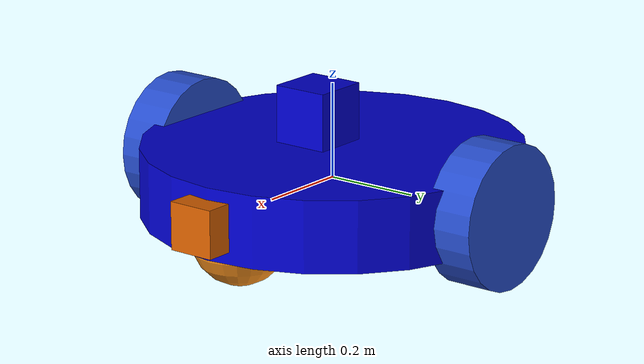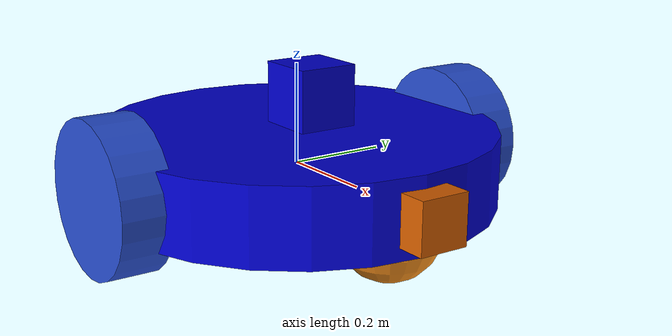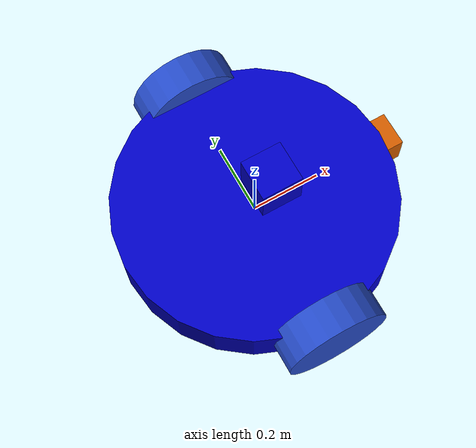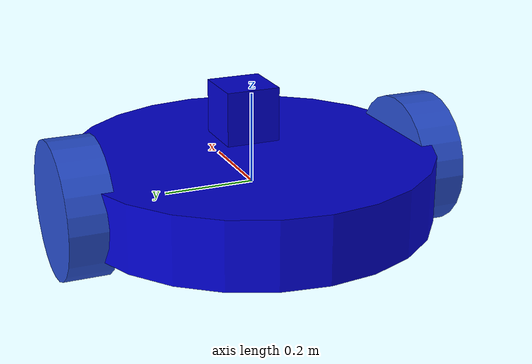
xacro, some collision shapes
<?xml version="1.0"?>
<robot name="x_rob" xmlns:xacro="http://www.ros.org/wiki/xacro">

<xacro:property name="cameraSize" value="0.12"/>
<xacro:property name="cameraMass" value="0.1"/>

<xacro:include filename="$(find pkg_rob_des)/urdf/plugin.gazebo" />
<xacro:include filename="$(find pkg_rob_des)/urdf/matrials.xacro" />
<xacro:include filename="$(find pkg_rob_des)/urdf/macros.xacro" />

<link name="robot_footprint"/>
    <joint name="base_joint" type="fixed">
      <origin xyz="0 0 0" rpy="0 0 0"/>
      <parent link="robot_footprint"/>
      <child link="base_link" />
    </joint>

     <link name="base_link">
     <pose>0 0 0.1 0 0 0</pose>
     <inertial>
      <mass value="1"/>
      <origin xyz="0.0 0 0.1" rpy=" 0 0 0"/>

       <inertia ixx="100"  ixy="0"  ixz="0" iyy="100" iyz="0" izz="100" />
      </inertial>

    <visual>
      <geometry>
        <cylinder length="0.15" radius="0.4"/>
      </geometry>
      <material name="blue"/>
    </visual>

    <collision name='caster_collision'>
      <origin xyz="-0.3 0 -0.05" rpy=" 0 0 0"/>
      <geometry>
        <sphere radius="0.1"/>
      </geometry>
      <surface>
        <friction>
          <ode>
            <mu>0</mu>
            <mu2>0</mu2>
            <slip1>1.0</slip1>
            <slip2>1.0</slip2>
          </ode>
        </friction>
      </surface>
    </collision>

    <visual name='caster_visual'>
      <origin xyz="0.3 0 -0.05" rpy=" 0 0 0"/>
      <geometry>
        <sphere radius="0.1"/>
      </geometry>
    </visual>

    <collision name='caster_front_collision'>
      <origin xyz="0.3 0 -0.05" rpy=" 0 0 0"/>
      <geometry>
        <sphere radius="0.1"/>
      </geometry>
      <surface>
        <friction>
          <ode>
            <mu>0</mu>
            <mu2>0</mu2>
            <slip1>1.0</slip1>
            <slip2>1.0</slip2>
          </ode>
        </friction>
      </surface>
    </collision>

    <visual name='caster_front_visual'>
      <origin xyz="0.3 0 -0.05" rpy=" 0 0 0"/>
      <geometry>
        <sphere radius="0.1"/>
      </geometry>
    </visual>

      </link>

      <link name="left_wheel">
    <collision name="collision">
      <origin xyz="0 0.2 0" rpy="0 1.5707 1.5707"/>
      <geometry>
        <cylinder radius="0.15" length="0.1"/>
      </geometry>
    </collision>
    <visual name="left_wheel_visual">
      <origin xyz="0 0.2 0" rpy="0 1.5707 1.5707"/>
      <geometry>
        <cylinder radius="0.15" length="0.1"/>
      </geometry>
    </visual>
    <inertial>
      <origin xyz="0 0.2 0" rpy="0 1.5707 1.5707"/>
      <mass value="5"/>
      <inertia
        ixx=".1" ixy="0.0" ixz="0.0"
        iyy=".1" iyz="0.0"
        izz=".1"/>
    </inertial>
  </link>

  <link name="right_wheel">
    <!--origin xyz="0.1 -0.13 0.1" rpy="0 1.5707 1.5707"/-->
    <collision name="collision">
      <origin xyz="0 -0.2 0" rpy="0 1.5707 1.5707"/>
      <geometry>
        <cylinder radius="0.15" length="0.1"/>
      </geometry>
    </collision>
    <visual name="right_wheel_visual">
      <origin xyz="0 -0.2 0" rpy="0 1.5707 1.5707"/>
      <geometry>
        <cylinder radius="0.15" length="0.1"/>
      </geometry>
    </visual>
    <inertial>
      <origin xyz="0 -0.2 0" rpy="0 1.5707 1.5707"/>
      <mass value="5"/>
      <inertia
        ixx=".1" ixy="0.0" ixz="0.0"
        iyy=".1" iyz="0.0"
        izz=".1"/>
    </inertial>
  </link>

  <joint type="continuous" name="left_wheel_hinge">
    <origin xyz="0 0.2 0" rpy="0 0 0"/>
    <!--origin xyz="0.1 0.13 0" rpy="0 1.5707 1.5707"/-->
    <child link="left_wheel"/>
    <parent link="base_link"/>
    <axis xyz="0 1 0" rpy="0 0 0"/>
    <limit effort="10000" velocity="1000"/>
    <joint_properties damping="1.0" friction="0.1"/>
  </joint>

  <joint type="continuous" name="right_wheel_hinge">
    <origin xyz="0 -0.2 0" rpy="0 0 0"/>
    <!--origin xyz="0.1 -0.13 0" rpy="0 1.5707 1.5707"/-->
    <child link="right_wheel"/>
    <parent link="base_link"/>
    <axis xyz="0 1 0" rpy="0 0 0"/>
    <limit effort="10000" velocity="1000"/>
    <joint_properties damping="1.0" friction="0.1"/>
  </joint>

  <link name="camera">
    <collision>
      <origin xyz="0 0 0" rpy="0 0 0"/>
      <geometry>
        <box size="${cameraSize} ${cameraSize} ${cameraSize}"/>
      </geometry>
    </collision>

    <visual>
      <origin xyz="0 0 0" rpy="0 0 0"/>
      <geometry>
        <box size="${cameraSize} ${cameraSize} ${cameraSize}"/>
      </geometry>
      <material name="blue"/>
    </visual>

    <inertial>
      <mass value="${cameraMass}" />
      <origin xyz="0 0 0" rpy="0 0 0"/>
      <box_inertia m="${cameraMass}" x="${cameraSize}" y="${cameraSize}" z="${cameraSize}" />
      <inertia ixx="1e-6" ixy="0" ixz="0" iyy="1e-6" iyz="0" izz="1e-6" />
    </inertial>
  </link>

  <joint name="camera_joint" type="fixed">
    <axis xyz="0 1 0" />
    <origin xyz="0.05 0 0.15" rpy="0 0 0"/>
    <parent link="base_link"/>
    <child link="camera"/>
  </joint>

  <link name="hokuyo">
    <collision>
      <origin xyz="0 0 0" rpy="0 0 0"/>
      <geometry>
    <box size="0.1 0.1 0.1"/>
      </geometry>
    </collision>

    <visual>
      <origin xyz="0 0 0" rpy="0 0 0"/>
      <geometry>
        <mesh filename="package://pkg_rob_des/meshes/hokuyo.dae"/>
      </geometry>
    </visual>

    <inertial>
      <mass value="1e-5" />
      <origin xyz="0 0 0" rpy="0 0 0"/>
      <inertia ixx="1e-6" ixy="0" ixz="0" iyy="1e-6" iyz="0" izz="1e-6" />
    </inertial>
  </link>

   <joint name="hokuyo_joint" type="fixed">
    <axis xyz="0 1 0" />
    <origin xyz=".4 0 0" rpy="0 0 0"/>
    <parent link="base_link"/>
    <child link="hokuyo"/>
  </joint>

</robot>

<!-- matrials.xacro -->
<robot name="x_rob" xmlns:xacro="http://www.ros.org/wiki/xacro">

  <material name="black">
    <color rgba="0.0 0.0 0.0 1.0"/>
  </material>

  <material name="blue">
    <color rgba="0.0 0.0 0.8 1.0"/>
  </material>

  <material name="green">
    <color rgba="0.0 0.8 0.0 1.0"/>
  </material>

  <material name="grey">
    <color rgba="0.2 0.2 0.2 1.0"/>
  </material>

  <material name="orange">
    <color rgba="${255/255} ${108/255} ${10/255} 1.0"/>
  </material>

  <material name="brown">
    <color rgba="${222/255} ${207/255} ${195/255} 1.0"/>
  </material>

  <material name="red">
    <color rgba="0.8 0.0 0.0 1.0"/>
  </material>

  <material name="white">
    <color rgba="1.0 1.0 1.0 1.0"/>
  </material>

  <material name="yellow">
    <color rgba="1.0 1.0 0 1.0"/>
  </material>

</robot>
